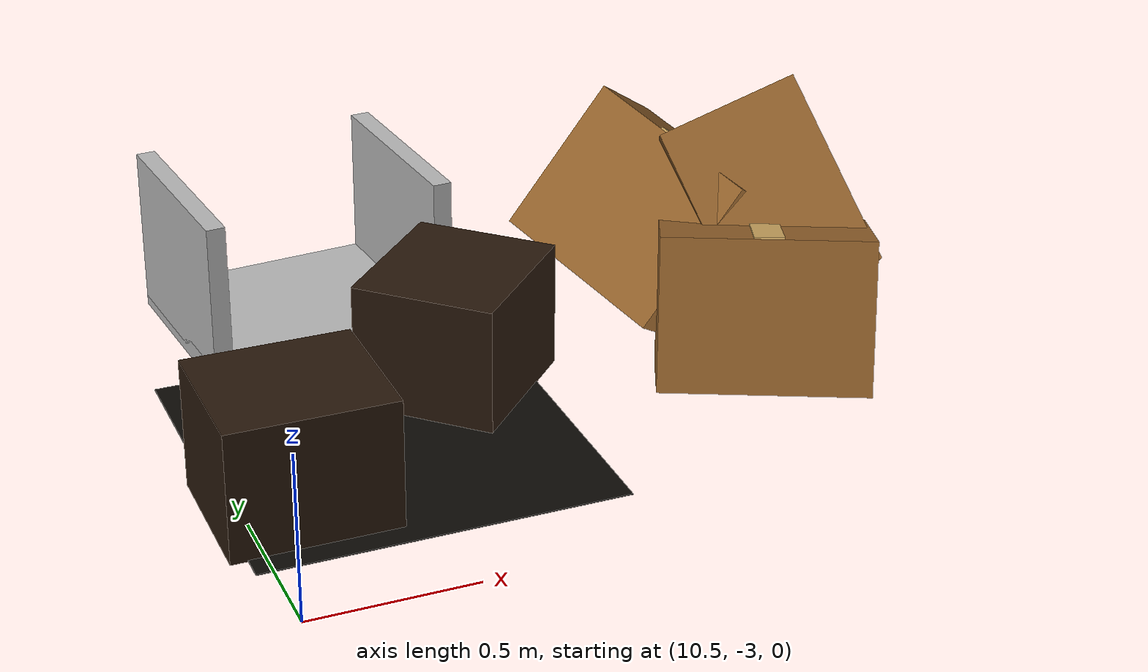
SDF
<sdf version="1.9">
 <world name="factory">
  <model name="fallen_box_08_0">
   <static>true</static>
   <pose>12 -1.836971 0 0 0 0</pose>
   <link name="body">
    <visual name="box_visual">
     <pose>0 0 0.4043261 0.5717792 -0.342539 2.034325</pose>
     <geometry><box><size>0.5749726 0.3667699 0.5158422</size></box></geometry>
     <material><ambient>.60 .40 .18 1</ambient><diffuse>.60 .40 .18 1</diffuse></material>
    </visual>
    <collision name="box_collision">
     <pose>0 0 0.4043261 0.5717792 -0.342539 2.034325</pose>
     <geometry><box><size>0.5749726 0.3667699 0.5158422</size></box></geometry>
    </collision>
    <visual name="box_tape_visual">
     <pose>0.1592445 -0.002793745 0.6109978 0.5717792 -0.342539 2.034325</pose>
     <geometry><box><size>0.09 0.3667699 0.006</size></box></geometry>
     <material><ambient>.85 .69 .4 1</ambient><diffuse>.85 .69 .4 1</diffuse></material>
    </visual>
   </link>
  </model>
  <model name="fallen_box_08_2">
   <static>true</static>
   <pose>12.16 -2.332859 0 0 0 0</pose>
   <link name="body">
    <visual name="box_visual">
     <pose>0 0 0.2913396 0.2780412 -0.001475857 2.708821</pose>
     <geometry><box><size>0.6308229 0.4257868 0.4626501</size></box></geometry>
     <material><ambient>.60 .40 .18 1</ambient><diffuse>.60 .40 .18 1</diffuse></material>
    </visual>
    <collision name="box_collision">
     <pose>0 0 0.2913396 0.2780412 -0.001475857 2.708821</pose>
     <geometry><box><size>0.6308229 0.4257868 0.4626501</size></box></geometry>
    </collision>
    <visual name="box_tape_visual">
     <pose>0.0272752 0.05824686 0.5166651 0.2780412 -0.001475857 2.708821</pose>
     <geometry><box><size>0.09 0.4257868 0.006</size></box></geometry>
     <material><ambient>.85 .69 .4 1</ambient><diffuse>.85 .69 .4 1</diffuse></material>
    </visual>
   </link>
  </model>
  <model name="fallen_box_08_4">
   <static>true</static>
   <pose>12.32 -2.022018 0 0 0 0</pose>
   <link name="body">
    <visual name="box_visual">
     <pose>0 0 0.4504998 0.4511938 -0.5758483 -1.993516</pose>
     <geometry><box><size>0.4640204 0.4439154 0.6173452</size></box></geometry>
     <material><ambient>.60 .40 .18 1</ambient><diffuse>.60 .40 .18 1</diffuse></material>
    </visual>
    <collision name="box_collision">
     <pose>0 0 0.4504998 0.4511938 -0.5758483 -1.993516</pose>
     <geometry><box><size>0.4640204 0.4439154 0.6173452</size></box></geometry>
    </collision>
    <visual name="box_tape_visual">
     <pose>-0.0612806 0.1950441 0.6857491 0.4511938 -0.5758483 -1.993516</pose>
     <geometry><box><size>0.09 0.4439154 0.006</size></box></geometry>
     <material><ambient>.85 .69 .4 1</ambient><diffuse>.85 .69 .4 1</diffuse></material>
    </visual>
   </link>
  </model>
  <model name="broken_crate_08">
   <static>true</static>
   <pose>11 -1.35 0 0 0 0.08101034</pose>
   <link name="body">
    <visual name="base_visual">
     <pose>0 0 0.03 0 0 0</pose>
     <geometry><mesh><uri>model://factory_scene_assets/meshes/wood_013.dae</uri></mesh></geometry>
    </visual>
    <collision name="base_collision">
     <pose>0 0 0.03 0 0 0</pose>
     <geometry><box><size>0.8 0.65 0.06</size></box></geometry>
    </collision>
    <visual name="side0_visual">
     <pose>-0.37 0 0.28 0 0 0</pose>
     <geometry><mesh><uri>model://factory_scene_assets/meshes/wood_014.dae</uri></mesh></geometry>
    </visual>
    <collision name="side0_collision">
     <pose>-0.37 0 0.28 0 0 0</pose>
     <geometry><box><size>0.06 0.65 0.5</size></box></geometry>
    </collision>
    <visual name="side1_visual">
     <pose>0.37 0 0.28 0 0 0</pose>
     <geometry><mesh><uri>model://factory_scene_assets/meshes/wood_014.dae</uri></mesh></geometry>
    </visual>
    <collision name="side1_collision">
     <pose>0.37 0 0.28 0 0 0</pose>
     <geometry><box><size>0.06 0.65 0.5</size></box></geometry>
    </collision>
   </link>
  </model>
  <model name="fire_06">
   <static>true</static>
   <pose>11 -2.2 0 0 0 0</pose>
   <link name="body">
    <visual name="scorch_visual">
     <pose>0 0 0.003 0 0 0</pose>
     <geometry><box><size>1.1 1.1 0.004</size></box></geometry>
     <material><ambient>.045 .035 .025 1</ambient><diffuse>.045 .035 .025 1</diffuse></material>
    </visual>
    <visual name="charred_crate0_visual">
     <pose>-0.35 -0.25 0.2 0 0 0</pose>
     <geometry><box><size>0.5 0.45 0.4</size></box></geometry>
     <material><ambient>.16 .095 .045 1</ambient><diffuse>.16 .095 .045 1</diffuse></material>
    </visual>
    <collision name="charred_crate0_collision">
     <pose>-0.35 -0.25 0.2 0 0 0</pose>
     <geometry><box><size>0.5 0.45 0.4</size></box></geometry>
    </collision>
    <visual name="charred_crate1_visual">
     <pose>0.32 0.25 0.2 0 0 0.8</pose>
     <geometry><box><size>0.5 0.45 0.4</size></box></geometry>
     <material><ambient>.16 .095 .045 1</ambient><diffuse>.16 .095 .045 1</diffuse></material>
    </visual>
    <collision name="charred_crate1_collision">
     <pose>0.32 0.25 0.2 0 0 0.8</pose>
     <geometry><box><size>0.5 0.45 0.4</size></box></geometry>
    </collision>
    <particle_emitter name="flame" type="box">
     <pose>0 0 .35 0 -1.57079633 0</pose>
     <emitting>true</emitting>
     <size>.12 .65 .65</size>
     <particle_size>.65 1.15 .65</particle_size>
     <lifetime>0.9</lifetime>
     <rate>75</rate>
     <min_velocity>0.35</min_velocity>
     <max_velocity>1.1</max_velocity>
     <scale_rate>0.02</scale_rate>
     <particle_scatter_ratio>.05</particle_scatter_ratio>
     <color_start>1 1 1 1</color_start>
     <color_end>1 .65 .35 0</color_end>
     <material>
      <diffuse>1 1 1 1</diffuse>
      <emissive>1 .55 .1 1</emissive>
      <pbr><metal><albedo_map>model://factory_scene_assets/textures/flame_colored.png</albedo_map></metal></pbr>
     </material>
    </particle_emitter>
    <particle_emitter name="smoke" type="box">
     <pose>0 0 1.25 0 -1.57079633 0</pose>
     <emitting>true</emitting>
     <size>.15 .85 .85</size>
     <particle_size>.8 .8 .8</particle_size>
     <lifetime>4</lifetime>
     <rate>13</rate>
     <min_velocity>0.45</min_velocity>
     <max_velocity>0.8</max_velocity>
     <scale_rate>0.45</scale_rate>
     <particle_scatter_ratio>.05</particle_scatter_ratio>
     <color_start>1 1 1 1</color_start>
     <color_end>.65 .65 .65 0</color_end>
     <material>
      <diffuse>1 1 1 1</diffuse>
      <emissive>0 0 0 1</emissive>
      <pbr><metal><albedo_map>model://factory_scene_assets/textures/smoke_gray.png</albedo_map></metal></pbr>
     </material>
    </particle_emitter>
    <light name="fire_glow" type="point">
     <pose>0 0 .8 0 0 0</pose>
     <diffuse>1 .38 .025 1</diffuse>
     <cast_shadows>false</cast_shadows>
     <attenuation>
      <range>4</range>
      <constant>1</constant>
      <linear>0.5</linear>
      <quadratic>0.2</quadratic>
     </attenuation>
    </light>
   </link>
  </model>
 </world>
</sdf>
